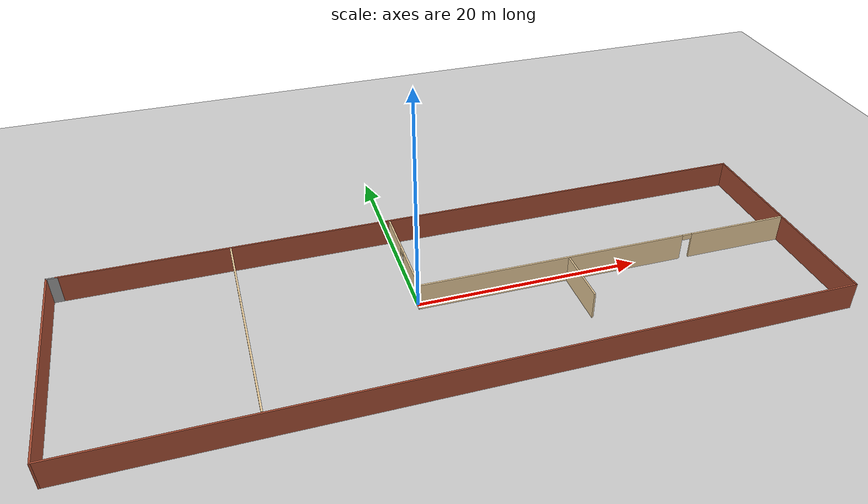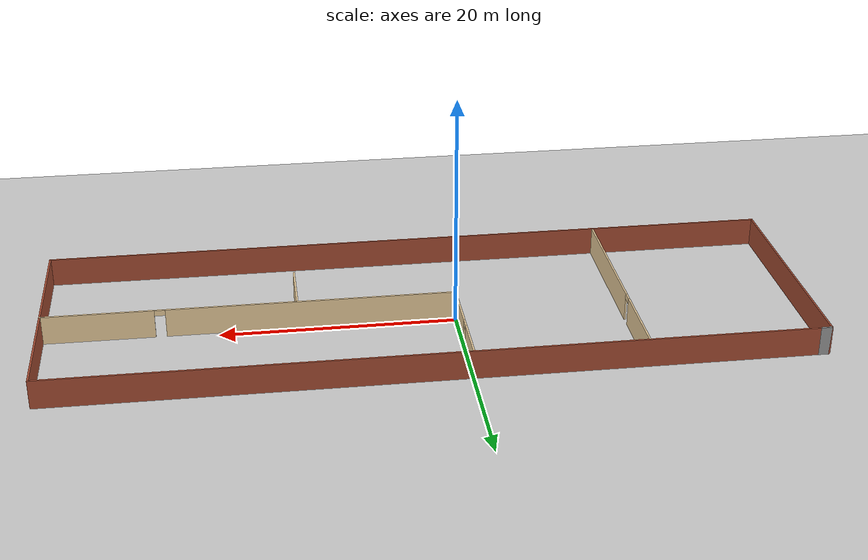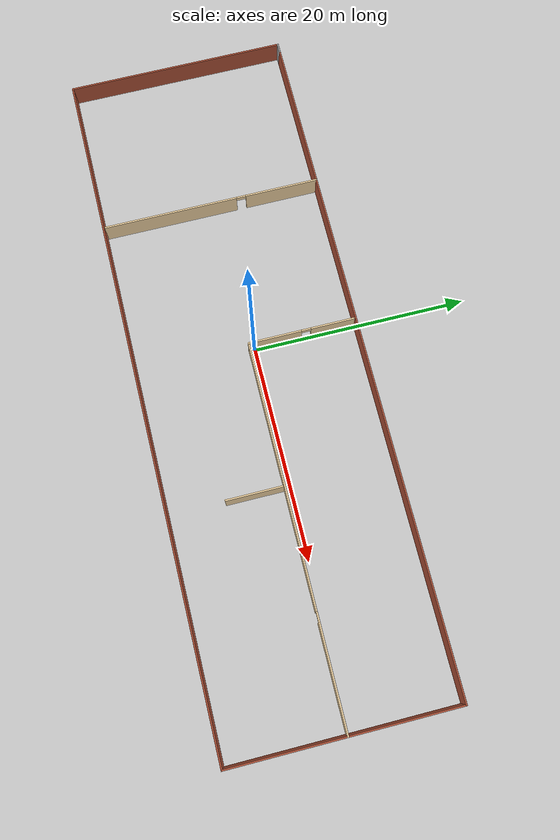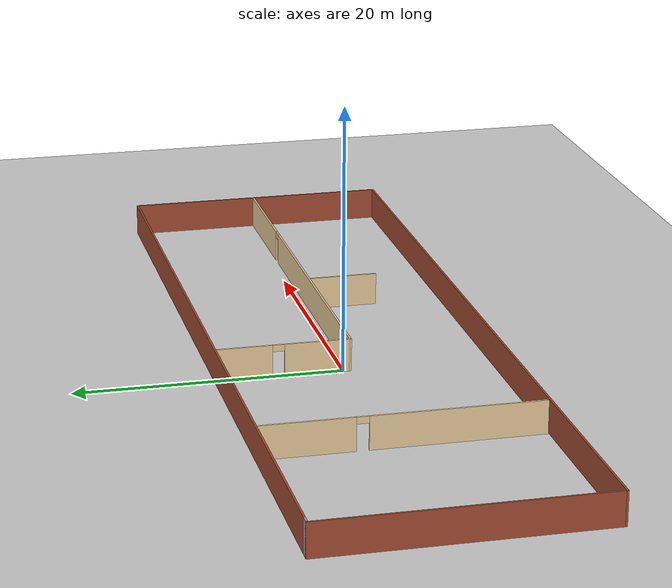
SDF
<sdf version="1.7">
 <world name="default">
  <light name="sun" type="directional">
   <pose>0 0 10 0 -0 0</pose>
   <diffuse>0.8 0.8 0.8 1</diffuse>
   <specular>0.2 0.2 0.2 1</specular>
   <attenuation>
    <range>1000</range>
    <constant>0.9</constant>
    <linear>0.01</linear>
    <quadratic>0.001</quadratic>
   </attenuation>
   <direction>-0.5 0.1 -0.9</direction>
   <spot><inner_angle>0</inner_angle><outer_angle>0</outer_angle><falloff>0</falloff></spot>
  </light>
  <model name="ground_plane">
   <static>1</static>
   <link name="link">
    <collision name="collision">
     <geometry><plane><normal>0 0 1</normal><size>100 100</size></plane></geometry>
     <surface>
      <contact><collide_bitmask>65535</collide_bitmask></contact>
      <friction><ode><mu>100</mu><mu2>50</mu2></ode></friction>
     </surface>
    </collision>
    <visual name="visual">
     <cast_shadows>0</cast_shadows>
     <geometry><plane><normal>0 0 1</normal><size>100 100</size></plane></geometry>
     <material>
      <script><uri>file://media/materials/scripts/gazebo.material</uri><name>Gazebo/Grey</name></script>
     </material>
    </visual>
   </link>
  </model>
  <gravity>0 0 -9.8</gravity>
  <magnetic_field>6e-06 2.3e-05 -4.2e-05</magnetic_field>
  <atmosphere type="adiabatic"/>
  <physics type="ode">
   <max_step_size>0.001</max_step_size>
   <real_time_factor>1</real_time_factor>
   <real_time_update_rate>1000</real_time_update_rate>
  </physics>
  <scene><ambient>0.4 0.4 0.4 1</ambient><background>0.7 0.7 0.7 1</background><shadows>1</shadows></scene>
  <spherical_coordinates>
   <surface_model>EARTH_WGS84</surface_model>
   <latitude_deg>0</latitude_deg>
   <longitude_deg>0</longitude_deg>
   <elevation>0</elevation>
   <heading_deg>0</heading_deg>
  </spherical_coordinates>
  <model name="toka">
   <pose>2.50913 -0.776541 0 0 -0 0</pose>
   <link name="Wall_1">
    <collision name="Wall_1_Collision">
     <geometry><box><size>63.5 0.15 2.5</size></box></geometry>
     <pose>0 0 1.25 0 -0 0</pose>
    </collision>
    <visual name="Wall_1_Visual">
     <pose>0 0 1.25 0 -0 0</pose>
     <geometry><box><size>63.5 0.15 2.5</size></box></geometry>
     <material>
      <script><uri>file://media/materials/scripts/gazebo.material</uri><name>Gazebo/Bricks</name></script>
      <ambient>1 1 1 1</ambient>
     </material>
     <meta><layer>0</layer></meta>
    </visual>
    <pose>0.375001 10.3 0 0 -0 0</pose>
   </link>
   <link name="Wall_10">
    <pose>-2.5684 5.18632 0 0 -0 1.5708</pose>
    <visual name="Wall_10_Visual_0">
     <pose>-2.50435 0 1.25 0 -0 0</pose>
     <geometry><box><size>4.9913 0.15 2.5</size></box></geometry>
     <material>
      <script><uri>file://media/materials/scripts/gazebo.material</uri><name>Gazebo/Grey</name></script>
      <ambient>0.921569 0.807843 0.615686 1</ambient>
     </material>
     <meta><layer>0</layer></meta>
    </visual>
    <collision name="Wall_10_Collision_0">
     <geometry><box><size>4.9913 0.15 2.5</size></box></geometry>
     <pose>-2.50435 0 1.25 0 -0 0</pose>
    </collision>
    <visual name="Wall_10_Visual_1">
     <pose>2.94565 0 1.25 0 -0 0</pose>
     <geometry><box><size>4.1087 0.15 2.5</size></box></geometry>
     <material>
      <script><uri>file://media/materials/scripts/gazebo.material</uri><name>Gazebo/Grey</name></script>
      <ambient>0.921569 0.807843 0.615686 1</ambient>
     </material>
     <meta><layer>0</layer></meta>
    </visual>
    <collision name="Wall_10_Collision_1">
     <geometry><box><size>4.1087 0.15 2.5</size></box></geometry>
     <pose>2.94565 0 1.25 0 -0 0</pose>
    </collision>
    <visual name="Wall_10_Visual_2">
     <pose>0.441301 0 2.25 0 -0 0</pose>
     <geometry><box><size>0.9 0.15 0.5</size></box></geometry>
     <material>
      <script><uri>file://media/materials/scripts/gazebo.material</uri><name>Gazebo/Grey</name></script>
      <ambient>0.921569 0.807843 0.615686 1</ambient>
     </material>
     <meta><layer>0</layer></meta>
    </visual>
    <collision name="Wall_10_Collision_2">
     <geometry><box><size>0.9 0.15 0.5</size></box></geometry>
     <pose>0.441301 0 2.25 0 -0 0</pose>
    </collision>
   </link>
   <link name="Wall_14">
    <collision name="Wall_14_Collision">
     <geometry><box><size>5.25 0.15 2.5</size></box></geometry>
     <pose>0 0 1.25 0 -0 0</pose>
    </collision>
    <visual name="Wall_14_Visual">
     <pose>0 0 1.25 0 -0 0</pose>
     <geometry><box><size>5.25 0.15 2.5</size></box></geometry>
     <material>
      <script><uri>file://media/materials/scripts/gazebo.material</uri><name>Gazebo/Grey</name></script>
      <ambient>0.921569 0.807843 0.615686 1</ambient>
     </material>
     <meta><layer>0</layer></meta>
    </visual>
    <pose>10.844 -2.47373 0 0 -0 -1.5708</pose>
   </link>
   <link name="Wall_2">
    <collision name="Wall_2_Collision">
     <geometry><box><size>20.75 0.15 2.5</size></box></geometry>
     <pose>0 0 1.25 0 -0 0</pose>
    </collision>
    <visual name="Wall_2_Visual">
     <pose>0 0 1.25 0 -0 0</pose>
     <geometry><box><size>20.75 0.15 2.5</size></box></geometry>
     <material>
      <script><uri>file://media/materials/scripts/gazebo.material</uri><name>Gazebo/Bricks</name></script>
      <ambient>1 1 1 1</ambient>
     </material>
     <meta><layer>0</layer></meta>
    </visual>
    <pose>32.05 0 0 0 -0 -1.5708</pose>
   </link>
   <link name="Wall_3">
    <collision name="Wall_3_Collision">
     <geometry><box><size>64.25 0.15 2.5</size></box></geometry>
     <pose>0 0 1.25 0 -0 0</pose>
    </collision>
    <visual name="Wall_3_Visual">
     <pose>0 0 1.25 0 -0 0</pose>
     <geometry><box><size>64.25 0.15 2.5</size></box></geometry>
     <material>
      <script><uri>file://media/materials/scripts/gazebo.material</uri><name>Gazebo/Bricks</name></script>
      <ambient>1 1 1 1</ambient>
     </material>
     <meta><layer>0</layer></meta>
    </visual>
    <pose>1e-06 -10.3 0 0 -0 3.14159</pose>
   </link>
   <link name="Wall_4">
    <collision name="Wall_4_Collision">
     <geometry><box><size>20.75 0.15 2.5</size></box></geometry>
     <pose>0 0 1.25 0 -0 0</pose>
    </collision>
    <visual name="Wall_4_Visual">
     <pose>0 0 1.25 0 -0 0</pose>
     <geometry><box><size>20.75 0.15 2.5</size></box></geometry>
     <material>
      <script><uri>file://media/materials/scripts/gazebo.material</uri><name>Gazebo/Bricks</name></script>
      <ambient>1 1 1 1</ambient>
     </material>
     <meta><layer>0</layer></meta>
    </visual>
    <pose>-32.05 0 0 0 -0 1.5708</pose>
   </link>
   <link name="Wall_5">
    <collision name="Wall_5_Collision">
     <geometry><box><size>1 0.15 2.5</size></box></geometry>
     <pose>0 0 1.25 0 -0 0</pose>
    </collision>
    <visual name="Wall_5_Visual">
     <pose>0 0 1.25 0 -0 0</pose>
     <geometry><box><size>1 0.15 2.5</size></box></geometry>
     <material>
      <script><uri>file://media/materials/scripts/gazebo.material</uri><name>Gazebo/Grey</name></script>
      <ambient>1 1 1 1</ambient>
     </material>
     <meta><layer>0</layer></meta>
    </visual>
    <pose>-31.625 10.3 0 0 -0 0</pose>
   </link>
   <link name="Wall_7">
    <pose>-16.8665 0.078739 0 0 -0 -1.5708</pose>
    <visual name="Wall_7_Visual_0">
     <pose>-6.78286 0 1.25 0 -0 0</pose>
     <geometry><box><size>6.93427 0.15 2.5</size></box></geometry>
     <material>
      <script><uri>file://media/materials/scripts/gazebo.material</uri><name>Gazebo/Grey</name></script>
      <ambient>0.921569 0.807843 0.615686 1</ambient>
     </material>
     <meta><layer>0</layer></meta>
    </visual>
    <collision name="Wall_7_Collision_0">
     <geometry><box><size>6.93427 0.15 2.5</size></box></geometry>
     <pose>-6.78286 0 1.25 0 -0 0</pose>
    </collision>
    <visual name="Wall_7_Visual_1">
     <pose>3.91714 0 1.25 0 -0 0</pose>
     <geometry><box><size>12.6657 0.15 2.5</size></box></geometry>
     <material>
      <script><uri>file://media/materials/scripts/gazebo.material</uri><name>Gazebo/Grey</name></script>
      <ambient>0.921569 0.807843 0.615686 1</ambient>
     </material>
     <meta><layer>0</layer></meta>
    </visual>
    <collision name="Wall_7_Collision_1">
     <geometry><box><size>12.6657 0.15 2.5</size></box></geometry>
     <pose>3.91714 0 1.25 0 -0 0</pose>
    </collision>
    <visual name="Wall_7_Visual_2">
     <pose>-2.86573 0 2.25 0 -0 0</pose>
     <geometry><box><size>0.9 0.15 0.5</size></box></geometry>
     <material>
      <script><uri>file://media/materials/scripts/gazebo.material</uri><name>Gazebo/Grey</name></script>
      <ambient>0.921569 0.807843 0.615686 1</ambient>
     </material>
     <meta><layer>0</layer></meta>
    </visual>
    <collision name="Wall_7_Collision_2">
     <geometry><box><size>0.9 0.15 0.5</size></box></geometry>
     <pose>-2.86573 0 2.25 0 -0 0</pose>
    </collision>
   </link>
   <link name="Wall_9">
    <pose>14.7316 0.261316 0 0 -0 3.14159</pose>
    <visual name="Wall_9_Visual_0">
     <pose>-12.6819 0 1.25 0 -0 0</pose>
     <geometry><box><size>9.38612 0.15 2.5</size></box></geometry>
     <material>
      <script><uri>file://media/materials/scripts/gazebo.material</uri><name>Gazebo/Grey</name></script>
      <ambient>0.921569 0.807843 0.615686 1</ambient>
     </material>
     <meta><layer>0</layer></meta>
    </visual>
    <collision name="Wall_9_Collision_0">
     <geometry><box><size>9.38612 0.15 2.5</size></box></geometry>
     <pose>-12.6819 0 1.25 0 -0 0</pose>
    </collision>
    <visual name="Wall_9_Visual_1">
     <pose>5.14306 0 1.25 0 -0 0</pose>
     <geometry><box><size>24.4639 0.15 2.5</size></box></geometry>
     <material>
      <script><uri>file://media/materials/scripts/gazebo.material</uri><name>Gazebo/Grey</name></script>
      <ambient>0.921569 0.807843 0.615686 1</ambient>
     </material>
     <meta><layer>0</layer></meta>
    </visual>
    <collision name="Wall_9_Collision_1">
     <geometry><box><size>24.4639 0.15 2.5</size></box></geometry>
     <pose>5.14306 0 1.25 0 -0 0</pose>
    </collision>
    <visual name="Wall_9_Visual_2">
     <pose>-7.53888 0 2.25 0 -0 0</pose>
     <geometry><box><size>0.9 0.15 0.5</size></box></geometry>
     <material>
      <script><uri>file://media/materials/scripts/gazebo.material</uri><name>Gazebo/Grey</name></script>
      <ambient>0.921569 0.807843 0.615686 1</ambient>
     </material>
     <meta><layer>0</layer></meta>
    </visual>
    <collision name="Wall_9_Collision_2">
     <geometry><box><size>0.9 0.15 0.5</size></box></geometry>
     <pose>-7.53888 0 2.25 0 -0 0</pose>
    </collision>
   </link>
   <static>1</static>
  </model>
 </world>
</sdf>
